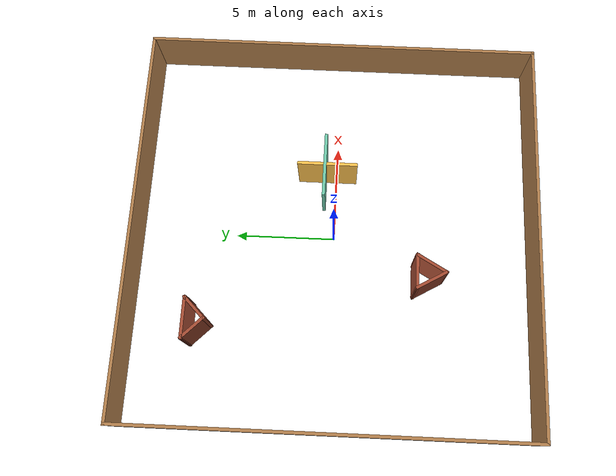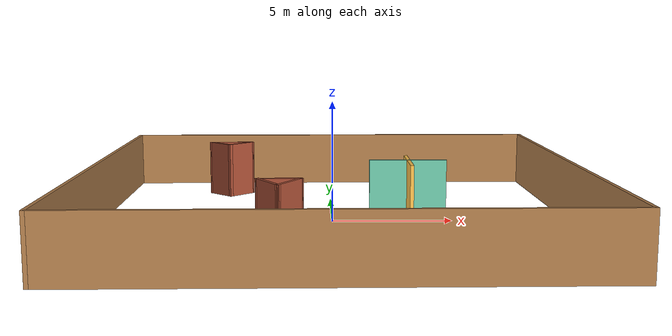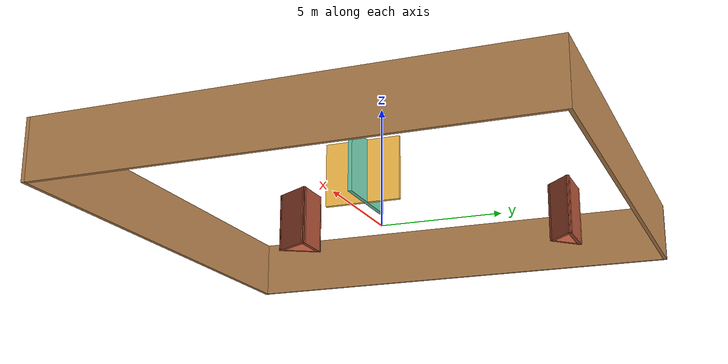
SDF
<?xml version='1.0'?>
<sdf version='1.7'>
  <model name='My_world'>
    <pose>0.103705 -0.028898 0 0 -0 0</pose>
    <link name='Wall_11'>
      <collision name='Wall_11_Collision'>
        <geometry>
          <box>
            <size>1.5 0.15 2.5</size>
          </box>
        </geometry>
        <pose>0 0 1.25 0 -0 0</pose>
      </collision>
      <visual name='Wall_11_Visual'>
        <pose>0 0 1.25 0 -0 0</pose>
        <geometry>
          <box>
            <size>1.5 0.15 2.5</size>
          </box>
        </geometry>
        <material>
          <script>
            <uri>file://media/materials/scripts/gazebo.material</uri>
            <name>Gazebo/Bricks</name>
          </script>
          <ambient>1 1 1 1</ambient>
        </material>
        <meta>
          <layer>0</layer>
        </meta>
      </visual>
      <pose>-5.32984 6.41811 0 0 -0 -0.785398</pose>
    </link>
    <link name='Wall_16'>
      <collision name='Wall_16_Collision'>
        <geometry>
          <box>
            <size>1.5 0.15 2.5</size>
          </box>
        </geometry>
        <pose>0 0 1.25 0 -0 0</pose>
      </collision>
      <visual name='Wall_16_Visual'>
        <pose>0 0 1.25 0 -0 0</pose>
        <geometry>
          <box>
            <size>1.5 0.15 2.5</size>
          </box>
        </geometry>
        <material>
          <script>
            <uri>file://media/materials/scripts/gazebo.material</uri>
            <name>Gazebo/Bricks</name>
          </script>
          <ambient>1 1 1 1</ambient>
        </material>
        <meta>
          <layer>0</layer>
        </meta>
      </visual>
      <pose>-4.37525 6.41811 0 0 -0 0.785398</pose>
    </link>
    <link name='Wall_17'>
      <collision name='Wall_17_Collision'>
        <geometry>
          <box>
            <size>2.05919 0.15 2.5</size>
          </box>
        </geometry>
        <pose>0 0 1.25 0 -0 0</pose>
      </collision>
      <visual name='Wall_17_Visual'>
        <pose>0 0 1.25 0 -0 0</pose>
        <geometry>
          <box>
            <size>2.05919 0.15 2.5</size>
          </box>
        </geometry>
        <material>
          <script>
            <uri>file://media/materials/scripts/gazebo.material</uri>
            <name>Gazebo/Bricks</name>
          </script>
          <ambient>1 1 1 1</ambient>
        </material>
        <meta>
          <layer>0</layer>
        </meta>
      </visual>
      <pose>-4.85255 6.8954 0 0 -0 3.14159</pose>
    </link>
    <link name='Wall_19'>
      <collision name='Wall_19_Collision'>
        <geometry>
          <box>
            <size>1.75 0.15 2.5</size>
          </box>
        </geometry>
        <pose>0 0 1.25 0 -0 0</pose>
      </collision>
      <visual name='Wall_19_Visual'>
        <pose>0 0 1.25 0 -0 0</pose>
        <geometry>
          <box>
            <size>1.75 0.15 2.5</size>
          </box>
        </geometry>
        <material>
          <script>
            <uri>file://media/materials/scripts/gazebo.material</uri>
            <name>Gazebo/Bricks</name>
          </script>
          <ambient>1 1 1 1</ambient>
        </material>
        <meta>
          <layer>0</layer>
        </meta>
      </visual>
      <pose>-2.55811 -4.73893 0 0 -0 -1.0472</pose>
    </link>
    <link name='Wall_20'>
      <collision name='Wall_20_Collision'>
        <geometry>
          <box>
            <size>1.75 0.15 2.5</size>
          </box>
        </geometry>
        <pose>0 0 1.25 0 -0 0</pose>
      </collision>
      <visual name='Wall_20_Visual'>
        <pose>0 0 1.25 0 -0 0</pose>
        <geometry>
          <box>
            <size>1.75 0.15 2.5</size>
          </box>
        </geometry>
        <material>
          <script>
            <uri>file://media/materials/scripts/gazebo.material</uri>
            <name>Gazebo/Bricks</name>
          </script>
          <ambient>1 1 1 1</ambient>
        </material>
        <meta>
          <layer>0</layer>
        </meta>
      </visual>
      <pose>-1.75811 -4.73893 0 0 -0 1.0472</pose>
    </link>
    <link name='Wall_23'>
      <collision name='Wall_23_Collision'>
        <geometry>
          <box>
            <size>1.75 0.15 2.5</size>
          </box>
        </geometry>
        <pose>0 0 1.25 0 -0 0</pose>
      </collision>
      <visual name='Wall_23_Visual'>
        <pose>0 0 1.25 0 -0 0</pose>
        <geometry>
          <box>
            <size>1.75 0.15 2.5</size>
          </box>
        </geometry>
        <material>
          <script>
            <uri>file://media/materials/scripts/gazebo.material</uri>
            <name>Gazebo/Bricks</name>
          </script>
          <ambient>1 1 1 1</ambient>
        </material>
        <meta>
          <layer>0</layer>
        </meta>
      </visual>
      <pose>-2.15811 -4.04611 0 0 -0 0</pose>
    </link>
    <link name='Wall_25'>
      <collision name='Wall_25_Collision'>
        <geometry>
          <box>
            <size>3 0.15 2.5</size>
          </box>
        </geometry>
        <pose>0 0 1.25 0 -0 0</pose>
      </collision>
      <visual name='Wall_25_Visual'>
        <pose>0 0 1.25 0 -0 0</pose>
        <geometry>
          <box>
            <size>3 0.15 2.5</size>
          </box>
        </geometry>
        <material>
          <script>
            <uri>file://media/materials/scripts/gazebo.material</uri>
            <name>Gazebo/Grey</name>
          </script>
          <ambient>1 0.764706 0.305882 1</ambient>
        </material>
        <meta>
          <layer>0</layer>
        </meta>
      </visual>
      <pose>3.11695 0.49877 0 0 -0 -1.5708</pose>
    </link>
    <link name='Wall_27'>
      <collision name='Wall_27_Collision'>
        <geometry>
          <box>
            <size>3.25 0.15 2.5</size>
          </box>
        </geometry>
        <pose>0 0 1.25 0 -0 0</pose>
      </collision>
      <visual name='Wall_27_Visual'>
        <pose>0 0 1.25 0 -0 0</pose>
        <geometry>
          <box>
            <size>3.25 0.15 2.5</size>
          </box>
        </geometry>
        <material>
          <script>
            <uri>file://media/materials/scripts/gazebo.material</uri>
            <name>Gazebo/Grey</name>
          </script>
          <ambient>0.435294 0.796078 0.67451 1</ambient>
        </material>
        <meta>
          <layer>0</layer>
        </meta>
      </visual>
      <pose>3.09591 0.626161 0 0 -0 0</pose>
    </link>
    <link name='Wall_3'>
      <collision name='Wall_3_Collision'>
        <geometry>
          <box>
            <size>20 0.15 2.5</size>
          </box>
        </geometry>
        <pose>0 0 1.25 0 -0 0</pose>
      </collision>
      <visual name='Wall_3_Visual'>
        <pose>0 0 1.25 0 -0 0</pose>
        <geometry>
          <box>
            <size>20 0.15 2.5</size>
          </box>
        </geometry>
        <material>
          <script>
            <uri>file://media/materials/scripts/gazebo.material</uri>
            <name>Gazebo/Wood</name>
          </script>
          <ambient>1 1 1 1</ambient>
        </material>
        <meta>
          <layer>0</layer>
        </meta>
      </visual>
      <pose>-9.8 -0 0 0 -0 1.5708</pose>
    </link>
    <link name='Wall_5'>
      <collision name='Wall_5_Collision'>
        <geometry>
          <box>
            <size>19.75 0.15 2.5</size>
          </box>
        </geometry>
        <pose>0 0 1.25 0 -0 0</pose>
      </collision>
      <visual name='Wall_5_Visual'>
        <pose>0 0 1.25 0 -0 0</pose>
        <geometry>
          <box>
            <size>19.75 0.15 2.5</size>
          </box>
        </geometry>
        <material>
          <script>
            <uri>file://media/materials/scripts/gazebo.material</uri>
            <name>Gazebo/Wood</name>
          </script>
          <ambient>1 1 1 1</ambient>
        </material>
        <meta>
          <layer>0</layer>
        </meta>
      </visual>
      <pose>-0 9.925 0 0 -0 0</pose>
    </link>
    <link name='Wall_8'>
      <collision name='Wall_8_Collision'>
        <geometry>
          <box>
            <size>20 0.15 2.5</size>
          </box>
        </geometry>
        <pose>0 0 1.25 0 -0 0</pose>
      </collision>
      <visual name='Wall_8_Visual'>
        <pose>0 0 1.25 0 -0 0</pose>
        <geometry>
          <box>
            <size>20 0.15 2.5</size>
          </box>
        </geometry>
        <material>
          <script>
            <uri>file://media/materials/scripts/gazebo.material</uri>
            <name>Gazebo/Wood</name>
          </script>
          <ambient>1 1 1 1</ambient>
        </material>
        <meta>
          <layer>0</layer>
        </meta>
      </visual>
      <pose>9.8 -0 0 0 -0 -1.5708</pose>
    </link>
    <link name='Wall_9'>
      <collision name='Wall_9_Collision'>
        <geometry>
          <box>
            <size>19.75 0.15 2.5</size>
          </box>
        </geometry>
        <pose>0 0 1.25 0 -0 0</pose>
      </collision>
      <visual name='Wall_9_Visual'>
        <pose>0 0 1.25 0 -0 0</pose>
        <geometry>
          <box>
            <size>19.75 0.15 2.5</size>
          </box>
        </geometry>
        <material>
          <script>
            <uri>file://media/materials/scripts/gazebo.material</uri>
            <name>Gazebo/Wood</name>
          </script>
          <ambient>1 1 1 1</ambient>
        </material>
        <meta>
          <layer>0</layer>
        </meta>
      </visual>
      <pose>-0 -9.925 0 0 -0 3.14159</pose>
    </link>
    <static>1</static>
  </model>
</sdf>
